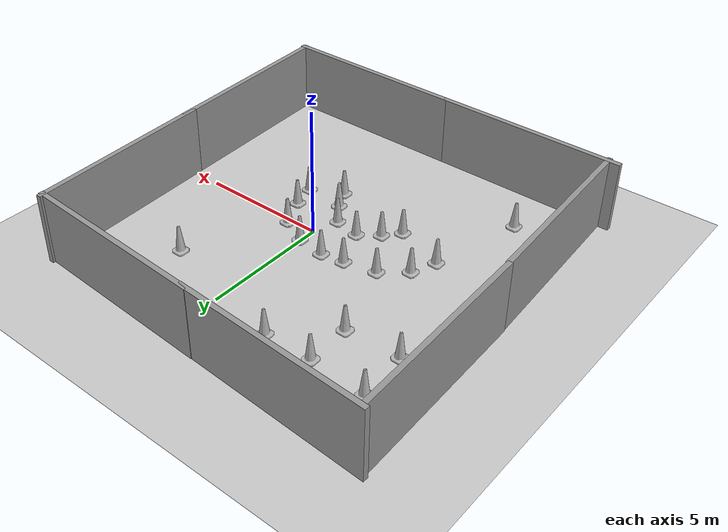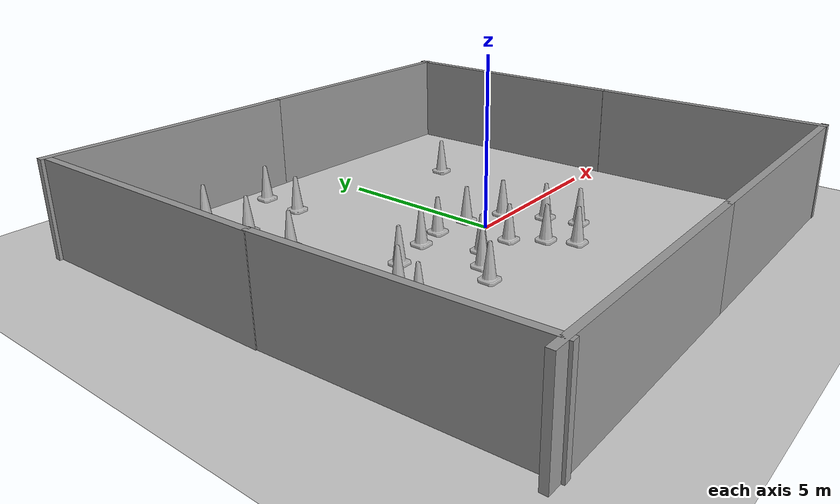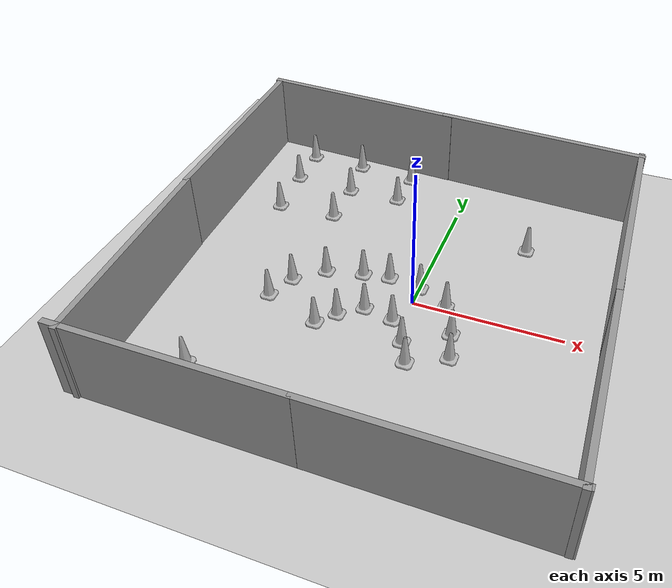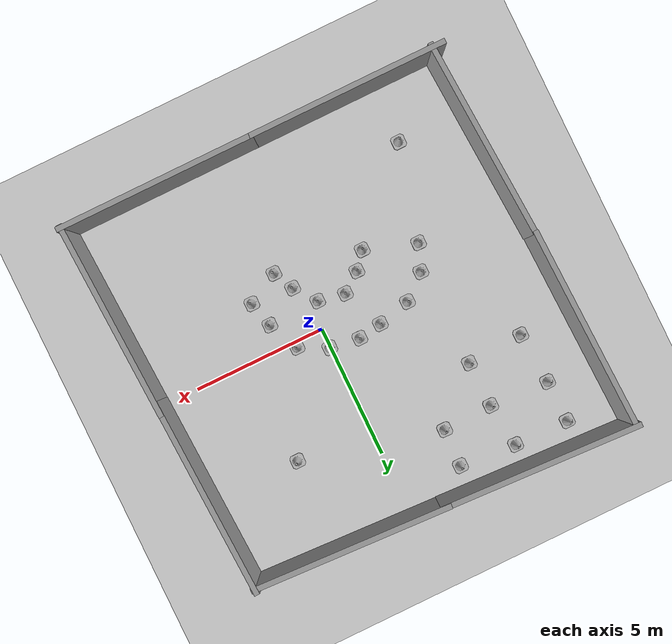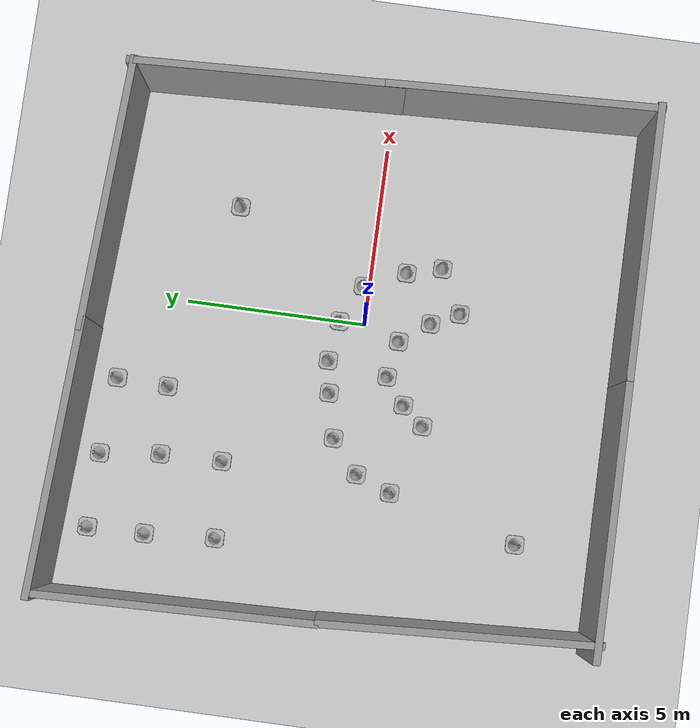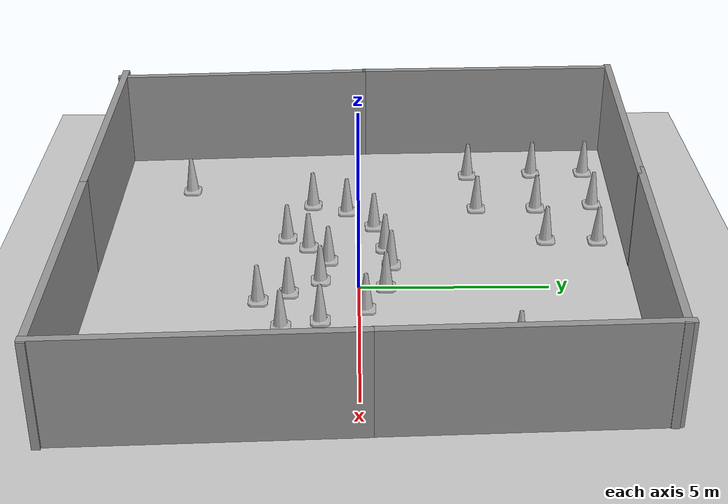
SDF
<sdf version="1.7">
 <world name="default">
  <light name="sun" type="directional">
   <pose>0 0 10 0 -0 0</pose>
   <diffuse>0.8 0.8 0.8 1</diffuse>
   <specular>0.2 0.2 0.2 1</specular>
   <attenuation>
    <range>1000</range>
    <constant>0.9</constant>
    <linear>0.01</linear>
    <quadratic>0.001</quadratic>
   </attenuation>
   <direction>-0.5 0.1 -0.9</direction>
   <spot><inner_angle>0</inner_angle><outer_angle>0</outer_angle><falloff>0</falloff></spot>
  </light>
  <model name="ground_plane">
   <static>1</static>
   <link name="link">
    <collision name="collision">
     <geometry><plane><normal>0 0 1</normal><size>100 100</size></plane></geometry>
     <surface>
      <contact><collide_bitmask>65535</collide_bitmask></contact>
      <friction><ode><mu>100</mu><mu2>50</mu2></ode></friction>
     </surface>
    </collision>
    <visual name="visual">
     <cast_shadows>0</cast_shadows>
     <geometry><plane><normal>0 0 1</normal><size>100 100</size></plane></geometry>
     <material>
      <script><uri>file://media/materials/scripts/gazebo.material</uri><name>Gazebo/Grey</name></script>
     </material>
    </visual>
   </link>
  </model>
  <gravity>0 0 -9.8</gravity>
  <magnetic_field>6e-06 2.3e-05 -4.2e-05</magnetic_field>
  <atmosphere type="adiabatic"/>
  <physics type="ode">
   <max_step_size>0.001</max_step_size>
   <real_time_factor>1</real_time_factor>
   <real_time_update_rate>1000</real_time_update_rate>
  </physics>
  <scene><ambient>0.4 0.4 0.4 1</ambient><background>0.7 0.7 0.7 1</background><shadows>1</shadows></scene>
  <spherical_coordinates>
   <surface_model>EARTH_WGS84</surface_model>
   <latitude_deg>0</latitude_deg>
   <longitude_deg>0</longitude_deg>
   <elevation>0</elevation>
   <heading_deg>0</heading_deg>
  </spherical_coordinates>
  <model name="grey_wall">
   <static>1</static>
   <link name="link">
    <pose>0 0 1.4 0 -0 0</pose>
    <collision name="collision"><geometry><box><size>7.5 0.2 2.8</size></box></geometry></collision>
    <visual name="visual">
     <cast_shadows>0</cast_shadows>
     <geometry><box><size>7.5 0.2 2.8</size></box></geometry>
     <material>
      <script>
       <uri>model://grey_wall/materials/scripts</uri>
       <uri>model://grey_wall/materials/textures</uri>
       <name>vrc/grey_wall</name>
      </script>
     </material>
    </visual>
   </link>
   <pose>-4.46975 -7.06928 0 0 -0 0</pose>
  </model>
  <model name="grey_wall_clone">
   <static>1</static>
   <link name="link">
    <pose>0 0 1.4 0 -0 0</pose>
    <collision name="collision"><geometry><box><size>7.5 0.2 2.8</size></box></geometry></collision>
    <visual name="visual">
     <cast_shadows>0</cast_shadows>
     <geometry><box><size>7.5 0.2 2.8</size></box></geometry>
     <material>
      <script>
       <uri>model://grey_wall/materials/scripts</uri>
       <uri>model://grey_wall/materials/textures</uri>
       <name>vrc/grey_wall</name>
      </script>
     </material>
    </visual>
   </link>
   <pose>2.90809 -7.06751 0 0 -0 0</pose>
  </model>
  <model name="grey_wall_clone_0">
   <static>1</static>
   <link name="link">
    <pose>0 0 1.4 0 -0 0</pose>
    <collision name="collision"><geometry><box><size>7.5 0.2 2.8</size></box></geometry></collision>
    <visual name="visual">
     <cast_shadows>0</cast_shadows>
     <geometry><box><size>7.5 0.2 2.8</size></box></geometry>
     <material>
      <script>
       <uri>model://grey_wall/materials/scripts</uri>
       <uri>model://grey_wall/materials/textures</uri>
       <name>vrc/grey_wall</name>
      </script>
     </material>
    </visual>
   </link>
   <pose>6.35026 -3.43917 0 0 0 -1.53079</pose>
  </model>
  <model name="grey_wall_clone_0_clone">
   <static>1</static>
   <link name="link">
    <pose>0 0 1.4 0 -0 0</pose>
    <collision name="collision"><geometry><box><size>7.5 0.2 2.8</size></box></geometry></collision>
    <visual name="visual">
     <cast_shadows>0</cast_shadows>
     <geometry><box><size>7.5 0.2 2.8</size></box></geometry>
     <material>
      <script>
       <uri>model://grey_wall/materials/scripts</uri>
       <uri>model://grey_wall/materials/textures</uri>
       <name>vrc/grey_wall</name>
      </script>
     </material>
    </visual>
   </link>
   <pose>6.0644 3.48725 0 0 0 -1.53079</pose>
  </model>
  <model name="grey_wall_clone_0_clone_0">
   <static>1</static>
   <link name="link">
    <pose>0 0 1.4 0 -0 0</pose>
    <collision name="collision"><geometry><box><size>7.5 0.2 2.8</size></box></geometry></collision>
    <visual name="visual">
     <cast_shadows>0</cast_shadows>
     <geometry><box><size>7.5 0.2 2.8</size></box></geometry>
     <material>
      <script>
       <uri>model://grey_wall/materials/scripts</uri>
       <uri>model://grey_wall/materials/textures</uri>
       <name>vrc/grey_wall</name>
      </script>
     </material>
    </visual>
   </link>
   <pose>2.30671 7.21493 0 0 0 -0.048975</pose>
  </model>
  <model name="grey_wall_clone_0_clone_0_clone">
   <static>1</static>
   <link name="link">
    <pose>0 0 1.4 0 -0 0</pose>
    <collision name="collision"><geometry><box><size>7.5 0.2 2.8</size></box></geometry></collision>
    <visual name="visual">
     <cast_shadows>0</cast_shadows>
     <geometry><box><size>7.5 0.2 2.8</size></box></geometry>
     <material>
      <script>
       <uri>model://grey_wall/materials/scripts</uri>
       <uri>model://grey_wall/materials/textures</uri>
       <name>vrc/grey_wall</name>
      </script>
     </material>
    </visual>
   </link>
   <pose>-4.79709 7.54785 0 0 0 -0.048975</pose>
  </model>
  <model name="grey_wall_clone_0_clone_0_clone_0">
   <static>1</static>
   <link name="link">
    <pose>0 0 1.4 0 -0 0</pose>
    <collision name="collision"><geometry><box><size>7.5 0.2 2.8</size></box></geometry></collision>
    <visual name="visual">
     <cast_shadows>0</cast_shadows>
     <geometry><box><size>7.5 0.2 2.8</size></box></geometry>
     <material>
      <script>
       <uri>model://grey_wall/materials/scripts</uri>
       <uri>model://grey_wall/materials/textures</uri>
       <name>vrc/grey_wall</name>
      </script>
     </material>
    </visual>
   </link>
   <pose>-8.25101 3.89221 0 0 -0 1.59878</pose>
  </model>
  <model name="grey_wall_clone_0_clone_0_clone_1">
   <static>1</static>
   <link name="link">
    <pose>0 0 1.4 0 -0 0</pose>
    <collision name="collision"><geometry><box><size>7.5 0.2 2.8</size></box></geometry></collision>
    <visual name="visual">
     <cast_shadows>0</cast_shadows>
     <geometry><box><size>7.5 0.2 2.8</size></box></geometry>
     <material>
      <script>
       <uri>model://grey_wall/materials/scripts</uri>
       <uri>model://grey_wall/materials/textures</uri>
       <name>vrc/grey_wall</name>
      </script>
     </material>
    </visual>
   </link>
   <pose>-7.92375 -3.49516 0 0 -0 1.62554</pose>
  </model>
  <model name="Construction Cone">
   <link name="link">
    <collision name="collision">
     <geometry>
      <mesh><scale>10 10 10</scale><uri>model://construction_cone/meshes/construction_cone.dae</uri></mesh>
     </geometry>
    </collision>
    <visual name="visual">
     <geometry>
      <mesh><scale>10 10 10</scale><uri>model://construction_cone/meshes/construction_cone.dae</uri></mesh>
     </geometry>
    </visual>
    <inertial>
     <inertia><ixx>1</ixx><ixy>0</ixy><ixz>0</ixz><iyy>1</iyy><iyz>0</iyz><izz>1</izz></inertia>
     <mass>1</mass>
    </inertial>
   </link>
   <pose>-6.42749 3.32072 -9e-06 -1e-06 -0 -0</pose>
  </model>
  <model name="Construction Cone_clone">
   <link name="link">
    <collision name="collision">
     <geometry>
      <mesh><scale>10 10 10</scale><uri>model://construction_cone/meshes/construction_cone.dae</uri></mesh>
     </geometry>
    </collision>
    <visual name="visual">
     <geometry>
      <mesh><scale>10 10 10</scale><uri>model://construction_cone/meshes/construction_cone.dae</uri></mesh>
     </geometry>
    </visual>
    <inertial>
     <inertia><ixx>1</ixx><ixy>0</ixy><ixz>0</ixz><iyy>1</iyy><iyz>0</iyz><izz>1</izz></inertia>
     <mass>1</mass>
    </inertial>
   </link>
   <pose>-6.56066 5.28062 0 -0 -0 -0</pose>
  </model>
  <model name="Construction Cone_clone_0">
   <link name="link">
    <collision name="collision">
     <geometry>
      <mesh><scale>10 10 10</scale><uri>model://construction_cone/meshes/construction_cone.dae</uri></mesh>
     </geometry>
    </collision>
    <visual name="visual">
     <geometry>
      <mesh><scale>10 10 10</scale><uri>model://construction_cone/meshes/construction_cone.dae</uri></mesh>
     </geometry>
    </visual>
    <inertial>
     <inertia><ixx>1</ixx><ixy>0</ixy><ixz>0</ixz><iyy>1</iyy><iyz>0</iyz><izz>1</izz></inertia>
     <mass>1</mass>
    </inertial>
   </link>
   <pose>-6.58231 6.86827 -0 0 -1e-06 0</pose>
  </model>
  <model name="Construction Cone_clone_1">
   <link name="link">
    <collision name="collision">
     <geometry>
      <mesh><scale>10 10 10</scale><uri>model://construction_cone/meshes/construction_cone.dae</uri></mesh>
     </geometry>
    </collision>
    <visual name="visual">
     <geometry>
      <mesh><scale>10 10 10</scale><uri>model://construction_cone/meshes/construction_cone.dae</uri></mesh>
     </geometry>
    </visual>
    <inertial>
     <inertia><ixx>1</ixx><ixy>0</ixy><ixz>0</ixz><iyy>1</iyy><iyz>0</iyz><izz>1</izz></inertia>
     <mass>1</mass>
    </inertial>
   </link>
   <pose>-4.51823 6.82733 -6e-06 -4e-06 0 0</pose>
  </model>
  <model name="Construction Cone_clone_2">
   <link name="link">
    <collision name="collision">
     <geometry>
      <mesh><scale>10 10 10</scale><uri>model://construction_cone/meshes/construction_cone.dae</uri></mesh>
     </geometry>
    </collision>
    <visual name="visual">
     <geometry>
      <mesh><scale>10 10 10</scale><uri>model://construction_cone/meshes/construction_cone.dae</uri></mesh>
     </geometry>
    </visual>
    <inertial>
     <inertia><ixx>1</ixx><ixy>0</ixy><ixz>0</ixz><iyy>1</iyy><iyz>0</iyz><izz>1</izz></inertia>
     <mass>1</mass>
    </inertial>
   </link>
   <pose>-2.37726 6.64512 -0 0 -0 0</pose>
  </model>
  <model name="Construction Cone_clone_3">
   <link name="link">
    <collision name="collision">
     <geometry>
      <mesh><scale>10 10 10</scale><uri>model://construction_cone/meshes/construction_cone.dae</uri></mesh>
     </geometry>
    </collision>
    <visual name="visual">
     <geometry>
      <mesh><scale>10 10 10</scale><uri>model://construction_cone/meshes/construction_cone.dae</uri></mesh>
     </geometry>
    </visual>
    <inertial>
     <inertia><ixx>1</ixx><ixy>0</ixy><ixz>0</ixz><iyy>1</iyy><iyz>0</iyz><izz>1</izz></inertia>
     <mass>1</mass>
    </inertial>
   </link>
   <pose>-4.29895 3.4285 -5e-06 -4e-06 1e-06 0</pose>
  </model>
  <model name="Construction Cone_clone_4">
   <link name="link">
    <collision name="collision">
     <geometry>
      <mesh><scale>10 10 10</scale><uri>model://construction_cone/meshes/construction_cone.dae</uri></mesh>
     </geometry>
    </collision>
    <visual name="visual">
     <geometry>
      <mesh><scale>10 10 10</scale><uri>model://construction_cone/meshes/construction_cone.dae</uri></mesh>
     </geometry>
    </visual>
    <inertial>
     <inertia><ixx>1</ixx><ixy>0</ixy><ixz>0</ixz><iyy>1</iyy><iyz>0</iyz><izz>1</izz></inertia>
     <mass>1</mass>
    </inertial>
   </link>
   <pose>-4.32372 5.15302 -0 0 -0 0</pose>
  </model>
  <model name="Construction Cone_clone_5">
   <link name="link">
    <collision name="collision">
     <geometry>
      <mesh><scale>10 10 10</scale><uri>model://construction_cone/meshes/construction_cone.dae</uri></mesh>
     </geometry>
    </collision>
    <visual name="visual">
     <geometry>
      <mesh><scale>10 10 10</scale><uri>model://construction_cone/meshes/construction_cone.dae</uri></mesh>
     </geometry>
    </visual>
    <inertial>
     <inertia><ixx>1</ixx><ixy>0</ixy><ixz>0</ixz><iyy>1</iyy><iyz>0</iyz><izz>1</izz></inertia>
     <mass>1</mass>
    </inertial>
   </link>
   <pose>-2.4342 5.21586 -3e-06 -3e-06 -1e-06 -0</pose>
  </model>
  <model name="Construction Cone_0">
   <link name="link">
    <collision name="collision">
     <geometry>
      <mesh><scale>10 10 10</scale><uri>model://construction_cone/meshes/construction_cone.dae</uri></mesh>
     </geometry>
    </collision>
    <visual name="visual">
     <geometry>
      <mesh><scale>10 10 10</scale><uri>model://construction_cone/meshes/construction_cone.dae</uri></mesh>
     </geometry>
    </visual>
    <inertial>
     <inertia><ixx>1</ixx><ixy>0</ixy><ixz>0</ixz><iyy>1</iyy><iyz>0</iyz><izz>1</izz></inertia>
     <mass>1</mass>
    </inertial>
   </link>
   <pose>-2.59431 -1.97241 -0 0 -0 0</pose>
  </model>
  <model name="Construction Cone_clone_7">
   <link name="link">
    <collision name="collision">
     <geometry>
      <mesh><scale>10 10 10</scale><uri>model://construction_cone/meshes/construction_cone.dae</uri></mesh>
     </geometry>
    </collision>
    <visual name="visual">
     <geometry>
      <mesh><scale>10 10 10</scale><uri>model://construction_cone/meshes/construction_cone.dae</uri></mesh>
     </geometry>
    </visual>
    <inertial>
     <inertia><ixx>1</ixx><ixy>0</ixy><ixz>0</ixz><iyy>1</iyy><iyz>0</iyz><izz>1</izz></inertia>
     <mass>1</mass>
    </inertial>
   </link>
   <pose>-1.35267 -0.814644 -0 0 -0 0</pose>
  </model>
  <model name="Construction Cone_clone_8">
   <link name="link">
    <collision name="collision">
     <geometry>
      <mesh><scale>10 10 10</scale><uri>model://construction_cone/meshes/construction_cone.dae</uri></mesh>
     </geometry>
    </collision>
    <visual name="visual">
     <geometry>
      <mesh><scale>10 10 10</scale><uri>model://construction_cone/meshes/construction_cone.dae</uri></mesh>
     </geometry>
    </visual>
    <inertial>
     <inertia><ixx>1</ixx><ixy>0</ixy><ixz>0</ixz><iyy>1</iyy><iyz>0</iyz><izz>1</izz></inertia>
     <mass>1</mass>
    </inertial>
   </link>
   <pose>-0.324358 -1.00674 -0 0 -0 0</pose>
  </model>
  <model name="Construction Cone_clone_9">
   <link name="link">
    <collision name="collision">
     <geometry>
      <mesh><scale>10 10 10</scale><uri>model://construction_cone/meshes/construction_cone.dae</uri></mesh>
     </geometry>
    </collision>
    <visual name="visual">
     <geometry>
      <mesh><scale>10 10 10</scale><uri>model://construction_cone/meshes/construction_cone.dae</uri></mesh>
     </geometry>
    </visual>
    <inertial>
     <inertia><ixx>1</ixx><ixy>0</ixy><ixz>0</ixz><iyy>1</iyy><iyz>0</iyz><izz>1</izz></inertia>
     <mass>1</mass>
    </inertial>
   </link>
   <pose>0.287082 -1.828 0 -0 -0 -0</pose>
  </model>
  <model name="Construction Cone_clone_10">
   <link name="link">
    <collision name="collision">
     <geometry>
      <mesh><scale>10 10 10</scale><uri>model://construction_cone/meshes/construction_cone.dae</uri></mesh>
     </geometry>
    </collision>
    <visual name="visual">
     <geometry>
      <mesh><scale>10 10 10</scale><uri>model://construction_cone/meshes/construction_cone.dae</uri></mesh>
     </geometry>
    </visual>
    <inertial>
     <inertia><ixx>1</ixx><ixy>0</ixy><ixz>0</ixz><iyy>1</iyy><iyz>0</iyz><izz>1</izz></inertia>
     <mass>1</mass>
    </inertial>
   </link>
   <pose>0.667635 -2.60267 -0 0 -1e-06 0</pose>
  </model>
  <model name="Construction Cone_clone_11">
   <link name="link">
    <collision name="collision">
     <geometry>
      <mesh><scale>10 10 10</scale><uri>model://construction_cone/meshes/construction_cone.dae</uri></mesh>
     </geometry>
    </collision>
    <visual name="visual">
     <geometry>
      <mesh><scale>10 10 10</scale><uri>model://construction_cone/meshes/construction_cone.dae</uri></mesh>
     </geometry>
    </visual>
    <inertial>
     <inertia><ixx>1</ixx><ixy>0</ixy><ixz>0</ixz><iyy>1</iyy><iyz>0</iyz><izz>1</izz></inertia>
     <mass>1</mass>
    </inertial>
   </link>
   <pose>-4.54829 -1.30896 -0 0 -1e-06 0</pose>
  </model>
  <model name="Construction Cone_clone_12">
   <link name="link">
    <collision name="collision">
     <geometry>
      <mesh><scale>10 10 10</scale><uri>model://construction_cone/meshes/construction_cone.dae</uri></mesh>
     </geometry>
    </collision>
    <visual name="visual">
     <geometry>
      <mesh><scale>10 10 10</scale><uri>model://construction_cone/meshes/construction_cone.dae</uri></mesh>
     </geometry>
    </visual>
    <inertial>
     <inertia><ixx>1</ixx><ixy>0</ixy><ixz>0</ixz><iyy>1</iyy><iyz>0</iyz><izz>1</izz></inertia>
     <mass>1</mass>
    </inertial>
   </link>
   <pose>-4.16187 -0.326709 -0 -0 -0 -0</pose>
  </model>
  <model name="Construction Cone_clone_13">
   <link name="link">
    <collision name="collision">
     <geometry>
      <mesh><scale>10 10 10</scale><uri>model://construction_cone/meshes/construction_cone.dae</uri></mesh>
     </geometry>
    </collision>
    <visual name="visual">
     <geometry>
      <mesh><scale>10 10 10</scale><uri>model://construction_cone/meshes/construction_cone.dae</uri></mesh>
     </geometry>
    </visual>
    <inertial>
     <inertia><ixx>1</ixx><ixy>0</ixy><ixz>0</ixz><iyy>1</iyy><iyz>0</iyz><izz>1</izz></inertia>
     <mass>1</mass>
    </inertial>
   </link>
   <pose>-3.25152 0.439044 -0 0 -0 0</pose>
  </model>
  <model name="Construction Cone_clone_14">
   <link name="link">
    <collision name="collision">
     <geometry>
      <mesh><scale>10 10 10</scale><uri>model://construction_cone/meshes/construction_cone.dae</uri></mesh>
     </geometry>
    </collision>
    <visual name="visual">
     <geometry>
      <mesh><scale>10 10 10</scale><uri>model://construction_cone/meshes/construction_cone.dae</uri></mesh>
     </geometry>
    </visual>
    <inertial>
     <inertia><ixx>1</ixx><ixy>0</ixy><ixz>0</ixz><iyy>1</iyy><iyz>0</iyz><izz>1</izz></inertia>
     <mass>1</mass>
    </inertial>
   </link>
   <pose>-2.01247 0.729358 -3e-06 -3e-06 -1e-06 -0</pose>
  </model>
  <model name="Construction Cone_clone_15">
   <link name="link">
    <collision name="collision">
     <geometry>
      <mesh><scale>10 10 10</scale><uri>model://construction_cone/meshes/construction_cone.dae</uri></mesh>
     </geometry>
    </collision>
    <visual name="visual">
     <geometry>
      <mesh><scale>10 10 10</scale><uri>model://construction_cone/meshes/construction_cone.dae</uri></mesh>
     </geometry>
    </visual>
    <inertial>
     <inertia><ixx>1</ixx><ixy>0</ixy><ixz>0</ixz><iyy>1</iyy><iyz>0</iyz><izz>1</izz></inertia>
     <mass>1</mass>
    </inertial>
   </link>
   <pose>-1.11359 0.875207 -0 0 -1e-06 0</pose>
  </model>
  <model name="Construction Cone_clone_16">
   <link name="link">
    <collision name="collision">
     <geometry>
      <mesh><scale>10 10 10</scale><uri>model://construction_cone/meshes/construction_cone.dae</uri></mesh>
     </geometry>
    </collision>
    <visual name="visual">
     <geometry>
      <mesh><scale>10 10 10</scale><uri>model://construction_cone/meshes/construction_cone.dae</uri></mesh>
     </geometry>
    </visual>
    <inertial>
     <inertia><ixx>1</ixx><ixy>0</ixy><ixz>0</ixz><iyy>1</iyy><iyz>0</iyz><izz>1</izz></inertia>
     <mass>1</mass>
    </inertial>
   </link>
   <pose>0.019701 0.712987 -0 0 -0 0</pose>
  </model>
  <model name="Construction Cone_clone_17">
   <link name="link">
    <collision name="collision">
     <geometry>
      <mesh><scale>10 10 10</scale><uri>model://construction_cone/meshes/construction_cone.dae</uri></mesh>
     </geometry>
    </collision>
    <visual name="visual">
     <geometry>
      <mesh><scale>10 10 10</scale><uri>model://construction_cone/meshes/construction_cone.dae</uri></mesh>
     </geometry>
    </visual>
    <inertial>
     <inertia><ixx>1</ixx><ixy>0</ixy><ixz>0</ixz><iyy>1</iyy><iyz>0</iyz><izz>1</izz></inertia>
     <mass>1</mass>
    </inertial>
   </link>
   <pose>1.08699 0.178637 -0 0 -0 0</pose>
  </model>
  <model name="Construction Cone_clone_18">
   <link name="link">
    <collision name="collision">
     <geometry>
      <mesh><scale>10 10 10</scale><uri>model://construction_cone/meshes/construction_cone.dae</uri></mesh>
     </geometry>
    </collision>
    <visual name="visual">
     <geometry>
      <mesh><scale>10 10 10</scale><uri>model://construction_cone/meshes/construction_cone.dae</uri></mesh>
     </geometry>
    </visual>
    <inertial>
     <inertia><ixx>1</ixx><ixy>0</ixy><ixz>0</ixz><iyy>1</iyy><iyz>0</iyz><izz>1</izz></inertia>
     <mass>1</mass>
    </inertial>
   </link>
   <pose>1.62056 -0.978764 -0 -0 -0 -0</pose>
  </model>
  <model name="Construction Cone_clone_19">
   <link name="link">
    <collision name="collision">
     <geometry>
      <mesh><scale>10 10 10</scale><uri>model://construction_cone/meshes/construction_cone.dae</uri></mesh>
     </geometry>
    </collision>
    <visual name="visual">
     <geometry>
      <mesh><scale>10 10 10</scale><uri>model://construction_cone/meshes/construction_cone.dae</uri></mesh>
     </geometry>
    </visual>
    <inertial>
     <inertia><ixx>1</ixx><ixy>0</ixy><ixz>0</ixz><iyy>1</iyy><iyz>0</iyz><izz>1</izz></inertia>
     <mass>1</mass>
    </inertial>
   </link>
   <pose>1.87211 -1.96256 -0 0 -0 0</pose>
  </model>
  <model name="Construction Cone_clone_7_clone">
   <link name="link">
    <collision name="collision">
     <geometry>
      <mesh><scale>10 10 10</scale><uri>model://construction_cone/meshes/construction_cone.dae</uri></mesh>
     </geometry>
    </collision>
    <visual name="visual">
     <geometry>
      <mesh><scale>10 10 10</scale><uri>model://construction_cone/meshes/construction_cone.dae</uri></mesh>
     </geometry>
    </visual>
    <inertial>
     <inertia><ixx>1</ixx><ixy>0</ixy><ixz>0</ixz><iyy>1</iyy><iyz>0</iyz><izz>1</izz></inertia>
     <mass>1</mass>
    </inertial>
   </link>
   <pose>-2.08335 -1.36997 -0 0 -1e-06 0</pose>
  </model>
  <model name="Construction Cone_clone_7_clone_0">
   <link name="link">
    <collision name="collision">
     <geometry>
      <mesh><scale>10 10 10</scale><uri>model://construction_cone/meshes/construction_cone.dae</uri></mesh>
     </geometry>
    </collision>
    <visual name="visual">
     <geometry>
      <mesh><scale>10 10 10</scale><uri>model://construction_cone/meshes/construction_cone.dae</uri></mesh>
     </geometry>
    </visual>
    <inertial>
     <inertia><ixx>1</ixx><ixy>0</ixy><ixz>0</ixz><iyy>1</iyy><iyz>0</iyz><izz>1</izz></inertia>
     <mass>1</mass>
    </inertial>
   </link>
   <pose>2.86766 3.90828 -0 0 -0 0</pose>
  </model>
  <model name="Construction Cone_clone_7_clone_1">
   <link name="link">
    <collision name="collision">
     <geometry>
      <mesh><scale>10 10 10</scale><uri>model://construction_cone/meshes/construction_cone.dae</uri></mesh>
     </geometry>
    </collision>
    <visual name="visual">
     <geometry>
      <mesh><scale>10 10 10</scale><uri>model://construction_cone/meshes/construction_cone.dae</uri></mesh>
     </geometry>
    </visual>
    <inertial>
     <inertia><ixx>1</ixx><ixy>0</ixy><ixz>0</ixz><iyy>1</iyy><iyz>0</iyz><izz>1</izz></inertia>
     <mass>1</mass>
    </inertial>
   </link>
   <pose>-5.49666 -4.92296 -0 0 -1e-06 0</pose>
  </model>
 </world>
</sdf>
